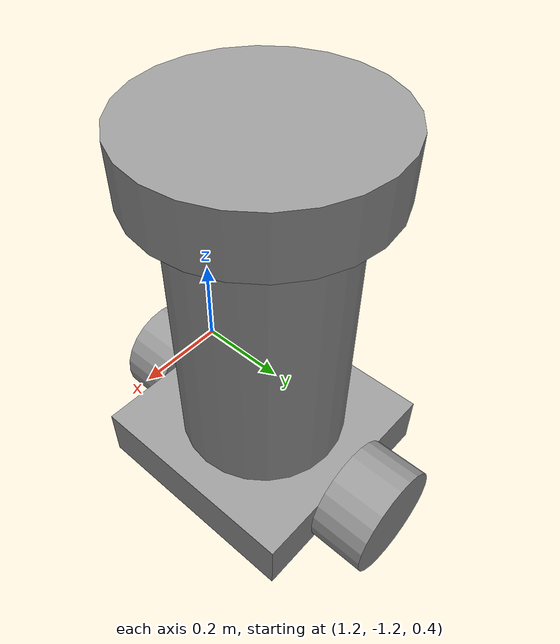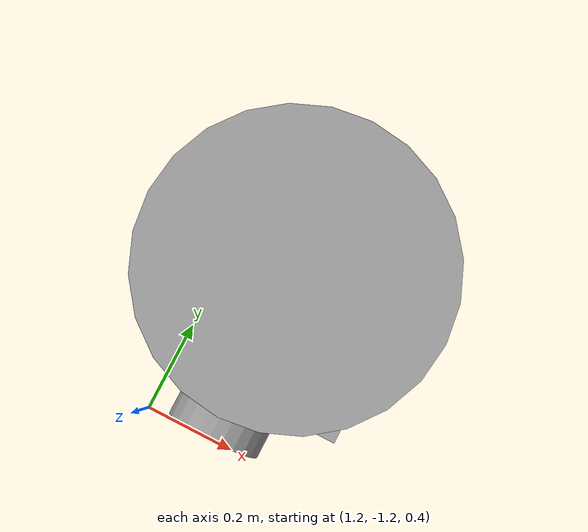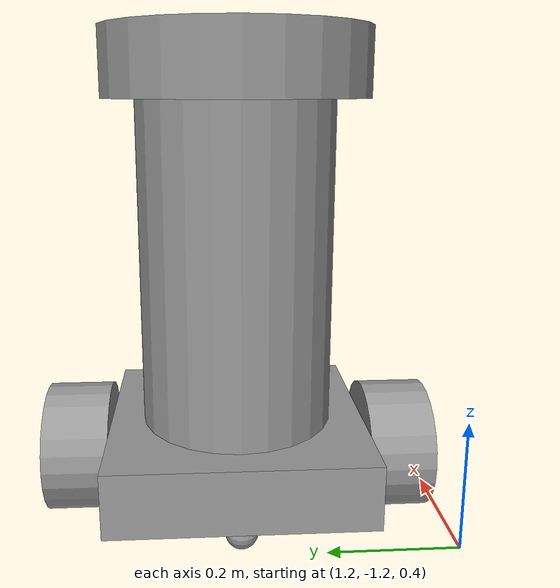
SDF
<?xml version='1.0'?>
<sdf version='1.6'>
  <model name='ServeronWheels'>
    <link name='link_4'>
      <pose frame=''>1.37401 -0.876349 0.5 1.5e-05 1e-06 -0.001069</pose>
      <inertial>
        <mass>1</mass>
        <inertia>
          <ixx>0.166667</ixx>
          <ixy>0</ixy>
          <ixz>0</ixz>
          <iyy>0.166667</iyy>
          <iyz>0</iyz>
          <izz>0.166667</izz>
        </inertia>
        <pose frame=''>0 0 0 0 -0 0</pose>
      </inertial>
      <self_collide>0</self_collide>
      <kinematic>0</kinematic>
      <visual name='visual'>
        <pose frame=''>0 0 0 0 -0 0</pose>
        <geometry>
          <box>
            <size>0.4 0.4 0.1</size>
          </box>
        </geometry>
        <material>
          <lighting>1</lighting>
          <script>
            <uri>file://media/materials/scripts/gazebo.material</uri>
            <name>Gazebo/Grey</name>
          </script>
          <shader type='pixel'>
            <normal_map>__default__</normal_map>
          </shader>
          <ambient>0.3 0.3 0.3 1</ambient>
          <diffuse>0.7 0.7 0.7 1</diffuse>
          <specular>0.01 0.01 0.01 1</specular>
          <emissive>0 0 0 1</emissive>
        </material>
        <transparency>0</transparency>
        <cast_shadows>1</cast_shadows>
      </visual>
      <collision name='collision'>
        <laser_retro>0</laser_retro>
        <max_contacts>10</max_contacts>
        <pose frame=''>0 0 0 0 -0 0</pose>
        <geometry>
          <box>
            <size>0.4 0.4 0.1</size>
          </box>
        </geometry>
        <surface>
          <friction>
            <ode>
              <mu>1</mu>
              <mu2>1</mu2>
              <fdir1>0 0 0</fdir1>
              <slip1>0</slip1>
              <slip2>0</slip2>
            </ode>
            <torsional>
              <coefficient>1</coefficient>
              <patch_radius>0</patch_radius>
              <surface_radius>0</surface_radius>
              <use_patch_radius>1</use_patch_radius>
              <ode>
                <slip>0</slip>
              </ode>
            </torsional>
          </friction>
          <bounce>
            <restitution_coefficient>0</restitution_coefficient>
            <threshold>1e+06</threshold>
          </bounce>
          <contact>
            <collide_without_contact>0</collide_without_contact>
            <collide_without_contact_bitmask>1</collide_without_contact_bitmask>
            <collide_bitmask>1</collide_bitmask>
            <ode>
              <soft_cfm>0</soft_cfm>
              <soft_erp>0.2</soft_erp>
              <kp>1e+13</kp>
              <kd>1</kd>
              <max_vel>0.01</max_vel>
              <min_depth>0</min_depth>
            </ode>
            <bullet>
              <split_impulse>1</split_impulse>
              <split_impulse_penetration_threshold>-0.01</split_impulse_penetration_threshold>
              <soft_cfm>0</soft_cfm>
              <soft_erp>0.2</soft_erp>
              <kp>1e+13</kp>
              <kd>1</kd>
            </bullet>
          </contact>
        </surface>
      </collision>
    </link>
    <link name='link_0'>
      <pose frame=''>1.22401 -0.876187 0.425001 0 -0 0</pose>
      <inertial>
        <mass>1</mass>
        <inertia>
          <ixx>0.1</ixx>
          <ixy>0</ixy>
          <ixz>0</ixz>
          <iyy>0.1</iyy>
          <iyz>0</iyz>
          <izz>0.1</izz>
        </inertia>
        <pose frame=''>0 0 0 0 -0 0</pose>
      </inertial>
      <gravity>1</gravity>
      <self_collide>0</self_collide>
      <kinematic>0</kinematic>
      <visual name='visual'>
        <pose frame=''>0 0 0 0 -0 0</pose>
        <geometry>
          <sphere>
            <radius>0.025</radius>
          </sphere>
        </geometry>
        <material>
          <lighting>1</lighting>
          <script>
            <uri>file://media/materials/scripts/gazebo.material</uri>
            <name>Gazebo/Grey</name>
          </script>
          <shader type='pixel'>
            <normal_map>__default__</normal_map>
          </shader>
          <ambient>0.3 0.3 0.3 1</ambient>
          <diffuse>0.7 0.7 0.7 1</diffuse>
          <specular>0.01 0.01 0.01 1</specular>
          <emissive>0 0 0 1</emissive>
        </material>
        <transparency>0</transparency>
        <cast_shadows>1</cast_shadows>
      </visual>
      <collision name='collision'>
        <laser_retro>0</laser_retro>
        <max_contacts>10</max_contacts>
        <pose frame=''>0 0 0 0 -0 0</pose>
        <geometry>
          <sphere>
            <radius>0.025</radius>
          </sphere>
        </geometry>
        <surface>
          <friction>
            <ode>
              <mu>1</mu>
              <mu2>1</mu2>
              <fdir1>0 0 0</fdir1>
              <slip1>0</slip1>
              <slip2>0</slip2>
            </ode>
            <torsional>
              <coefficient>1</coefficient>
              <patch_radius>0</patch_radius>
              <surface_radius>0</surface_radius>
              <use_patch_radius>1</use_patch_radius>
              <ode>
                <slip>0</slip>
              </ode>
            </torsional>
          </friction>
          <bounce>
            <restitution_coefficient>0</restitution_coefficient>
            <threshold>1e+06</threshold>
          </bounce>
          <contact>
            <collide_without_contact>0</collide_without_contact>
            <collide_without_contact_bitmask>1</collide_without_contact_bitmask>
            <collide_bitmask>1</collide_bitmask>
            <ode>
              <soft_cfm>0</soft_cfm>
              <soft_erp>0.2</soft_erp>
              <kp>1e+13</kp>
              <kd>1</kd>
              <max_vel>0.01</max_vel>
              <min_depth>0</min_depth>
            </ode>
            <bullet>
              <split_impulse>1</split_impulse>
              <split_impulse_penetration_threshold>-0.01</split_impulse_penetration_threshold>
              <soft_cfm>0</soft_cfm>
              <soft_erp>0.2</soft_erp>
              <kp>1e+13</kp>
              <kd>1</kd>
            </bullet>
          </contact>
        </surface>
      </collision>
    </link>
    <link name='link_0_clone'>
      <pose frame=''>1.52401 -0.876509 0.425 0 -0 0</pose>
      <inertial>
        <mass>1</mass>
        <inertia>
          <ixx>0.1</ixx>
          <ixy>0</ixy>
          <ixz>0</ixz>
          <iyy>0.1</iyy>
          <iyz>0</iyz>
          <izz>0.1</izz>
        </inertia>
        <pose frame=''>0 0 0 0 -0 0</pose>
      </inertial>
      <self_collide>0</self_collide>
      <kinematic>0</kinematic>
      <gravity>1</gravity>
      <visual name='visual'>
        <pose frame=''>0 0 0 0 -0 0</pose>
        <geometry>
          <sphere>
            <radius>0.025</radius>
          </sphere>
        </geometry>
        <material>
          <lighting>1</lighting>
          <script>
            <uri>file://media/materials/scripts/gazebo.material</uri>
            <name>Gazebo/Grey</name>
          </script>
          <shader type='pixel'>
            <normal_map>__default__</normal_map>
          </shader>
          <ambient>0.3 0.3 0.3 1</ambient>
          <diffuse>0.7 0.7 0.7 1</diffuse>
          <specular>0.01 0.01 0.01 1</specular>
          <emissive>0 0 0 1</emissive>
        </material>
        <transparency>0</transparency>
        <cast_shadows>1</cast_shadows>
      </visual>
      <collision name='collision'>
        <laser_retro>0</laser_retro>
        <max_contacts>10</max_contacts>
        <pose frame=''>0 0 0 0 -0 0</pose>
        <geometry>
          <sphere>
            <radius>0.025</radius>
          </sphere>
        </geometry>
        <surface>
          <friction>
            <ode>
              <mu>1</mu>
              <mu2>1</mu2>
              <fdir1>0 0 0</fdir1>
              <slip1>0</slip1>
              <slip2>0</slip2>
            </ode>
            <torsional>
              <coefficient>1</coefficient>
              <patch_radius>0</patch_radius>
              <surface_radius>0</surface_radius>
              <use_patch_radius>1</use_patch_radius>
              <ode>
                <slip>0</slip>
              </ode>
            </torsional>
          </friction>
          <bounce>
            <restitution_coefficient>0</restitution_coefficient>
            <threshold>1e+06</threshold>
          </bounce>
          <contact>
            <collide_without_contact>0</collide_without_contact>
            <collide_without_contact_bitmask>1</collide_without_contact_bitmask>
            <collide_bitmask>1</collide_bitmask>
            <ode>
              <soft_cfm>0</soft_cfm>
              <soft_erp>0.2</soft_erp>
              <kp>1e+13</kp>
              <kd>1</kd>
              <max_vel>0.01</max_vel>
              <min_depth>0</min_depth>
            </ode>
            <bullet>
              <split_impulse>1</split_impulse>
              <split_impulse_penetration_threshold>-0.01</split_impulse_penetration_threshold>
              <soft_cfm>0</soft_cfm>
              <soft_erp>0.2</soft_erp>
              <kp>1e+13</kp>
              <kd>1</kd>
            </bullet>
          </contact>
        </surface>
      </collision>
    </link>
    <link name='link_5'>
      <pose frame=''>1.35374 -1.12644 0.499883 1.57 1e-06 -0.001069</pose>
      <inertial>
        <mass>1</mass>
        <inertia>
          <ixx>0.145833</ixx>
          <ixy>0</ixy>
          <ixz>0</ixz>
          <iyy>0.145833</iyy>
          <iyz>0</iyz>
          <izz>0.125</izz>
        </inertia>
        <pose frame=''>0 0 0 0 -0 0</pose>
      </inertial>
      <self_collide>0</self_collide>
      <kinematic>0</kinematic>
      <gravity>1</gravity>
      <visual name='visual'>
        <pose frame=''>0 0 0 0 -0 0</pose>
        <geometry>
          <cylinder>
            <radius>0.1</radius>
            <length>0.1</length>
          </cylinder>
        </geometry>
        <material>
          <lighting>1</lighting>
          <script>
            <uri>file://media/materials/scripts/gazebo.material</uri>
            <name>Gazebo/Grey</name>
          </script>
          <shader type='pixel'>
            <normal_map>__default__</normal_map>
          </shader>
          <ambient>0.3 0.3 0.3 1</ambient>
          <diffuse>0.7 0.7 0.7 1</diffuse>
          <specular>0.01 0.01 0.01 1</specular>
          <emissive>0 0 0 1</emissive>
        </material>
        <transparency>0</transparency>
        <cast_shadows>1</cast_shadows>
      </visual>
      <collision name='collision'>
        <laser_retro>0</laser_retro>
        <max_contacts>10</max_contacts>
        <pose frame=''>0 0 0 0 -0 0</pose>
        <geometry>
          <cylinder>
            <radius>0.1</radius>
            <length>0.1</length>
          </cylinder>
        </geometry>
        <surface>
          <friction>
            <ode>
              <mu>1</mu>
              <mu2>1</mu2>
              <fdir1>0 0 0</fdir1>
              <slip1>0</slip1>
              <slip2>0</slip2>
            </ode>
            <torsional>
              <coefficient>1</coefficient>
              <patch_radius>0</patch_radius>
              <surface_radius>0</surface_radius>
              <use_patch_radius>1</use_patch_radius>
              <ode>
                <slip>0</slip>
              </ode>
            </torsional>
          </friction>
          <bounce>
            <restitution_coefficient>0</restitution_coefficient>
            <threshold>1e+06</threshold>
          </bounce>
          <contact>
            <collide_without_contact>0</collide_without_contact>
            <collide_without_contact_bitmask>1</collide_without_contact_bitmask>
            <collide_bitmask>1</collide_bitmask>
            <ode>
              <soft_cfm>0</soft_cfm>
              <soft_erp>0.2</soft_erp>
              <kp>1e+13</kp>
              <kd>1</kd>
              <max_vel>0.01</max_vel>
              <min_depth>0</min_depth>
            </ode>
            <bullet>
              <split_impulse>1</split_impulse>
              <split_impulse_penetration_threshold>-0.01</split_impulse_penetration_threshold>
              <soft_cfm>0</soft_cfm>
              <soft_erp>0.2</soft_erp>
              <kp>1e+13</kp>
              <kd>1</kd>
            </bullet>
          </contact>
        </surface>
      </collision>
    </link>
    <link name='link_5_clone'>
      <pose frame=''>1.37428 -0.626162 0.499988 1.57001 2e-06 -0.002138</pose>
      <inertial>
        <mass>1</mass>
        <inertia>
          <ixx>0.145833</ixx>
          <ixy>0</ixy>
          <ixz>0</ixz>
          <iyy>0.145833</iyy>
          <iyz>0</iyz>
          <izz>0.125</izz>
        </inertia>
        <pose frame=''>0 0 0 0 -0 0</pose>
      </inertial>
      <self_collide>0</self_collide>
      <kinematic>0</kinematic>
      <visual name='visual'>
        <pose frame=''>0 0 0 0 -0 0</pose>
        <geometry>
          <cylinder>
            <radius>0.1</radius>
            <length>0.1</length>
          </cylinder>
        </geometry>
        <material>
          <lighting>1</lighting>
          <script>
            <uri>file://media/materials/scripts/gazebo.material</uri>
            <name>Gazebo/Grey</name>
          </script>
          <shader type='pixel'>
            <normal_map>__default__</normal_map>
          </shader>
          <ambient>0.3 0.3 0.3 1</ambient>
          <diffuse>0.7 0.7 0.7 1</diffuse>
          <specular>0.01 0.01 0.01 1</specular>
          <emissive>0 0 0 1</emissive>
        </material>
        <transparency>0</transparency>
        <cast_shadows>1</cast_shadows>
      </visual>
      <collision name='collision'>
        <laser_retro>0</laser_retro>
        <max_contacts>10</max_contacts>
        <pose frame=''>0 0 0 0 -0 0</pose>
        <geometry>
          <cylinder>
            <radius>0.1</radius>
            <length>0.1</length>
          </cylinder>
        </geometry>
        <surface>
          <friction>
            <ode>
              <mu>1</mu>
              <mu2>1</mu2>
              <fdir1>0 0 0</fdir1>
              <slip1>0</slip1>
              <slip2>0</slip2>
            </ode>
            <torsional>
              <coefficient>1</coefficient>
              <patch_radius>0</patch_radius>
              <surface_radius>0</surface_radius>
              <use_patch_radius>1</use_patch_radius>
              <ode>
                <slip>0</slip>
              </ode>
            </torsional>
          </friction>
          <bounce>
            <restitution_coefficient>0</restitution_coefficient>
            <threshold>1e+06</threshold>
          </bounce>
          <contact>
            <collide_without_contact>0</collide_without_contact>
            <collide_without_contact_bitmask>1</collide_without_contact_bitmask>
            <collide_bitmask>1</collide_bitmask>
            <ode>
              <soft_cfm>0</soft_cfm>
              <soft_erp>0.2</soft_erp>
              <kp>1e+13</kp>
              <kd>1</kd>
              <max_vel>0.01</max_vel>
              <min_depth>0</min_depth>
            </ode>
            <bullet>
              <split_impulse>1</split_impulse>
              <split_impulse_penetration_threshold>-0.01</split_impulse_penetration_threshold>
              <soft_cfm>0</soft_cfm>
              <soft_erp>0.2</soft_erp>
              <kp>1e+13</kp>
              <kd>1</kd>
            </bullet>
          </contact>
        </surface>
      </collision>
    </link>
    <link name='link_5_clone_clone'>
      <pose frame=''>1.37401 -0.876353 0.799991 0 3e-06 -0.003207</pose>
      <inertial>
        <mass>1</mass>
        <inertia>
          <ixx>0.145833</ixx>
          <ixy>0</ixy>
          <ixz>0</ixz>
          <iyy>0.145833</iyy>
          <iyz>0</iyz>
          <izz>0.125</izz>
        </inertia>
        <pose frame=''>0 0 0 0 -0 0</pose>
      </inertial>
      <self_collide>0</self_collide>
      <kinematic>0</kinematic>
      <visual name='visual'>
        <pose frame=''>0 0 0 0 -0 0</pose>
        <geometry>
          <cylinder>
            <radius>0.15</radius>
            <length>0.5</length>
          </cylinder>
        </geometry>
        <material>
          <lighting>1</lighting>
          <script>
            <uri>file://media/materials/scripts/gazebo.material</uri>
            <name>Gazebo/Grey</name>
          </script>
          <shader type='pixel'>
            <normal_map>__default__</normal_map>
          </shader>
          <ambient>0.3 0.3 0.3 1</ambient>
          <diffuse>0.7 0.7 0.7 1</diffuse>
          <specular>0.01 0.01 0.01 1</specular>
          <emissive>0 0 0 1</emissive>
        </material>
        <transparency>0</transparency>
        <cast_shadows>1</cast_shadows>
      </visual>
      <collision name='collision'>
        <laser_retro>0</laser_retro>
        <max_contacts>10</max_contacts>
        <pose frame=''>0 0 0 0 -0 0</pose>
        <geometry>
          <cylinder>
            <radius>0.15</radius>
            <length>0.5</length>
          </cylinder>
        </geometry>
        <surface>
          <friction>
            <ode>
              <mu>1</mu>
              <mu2>1</mu2>
              <fdir1>0 0 0</fdir1>
              <slip1>0</slip1>
              <slip2>0</slip2>
            </ode>
            <torsional>
              <coefficient>1</coefficient>
              <patch_radius>0</patch_radius>
              <surface_radius>0</surface_radius>
              <use_patch_radius>1</use_patch_radius>
              <ode>
                <slip>0</slip>
              </ode>
            </torsional>
          </friction>
          <bounce>
            <restitution_coefficient>0</restitution_coefficient>
            <threshold>1e+06</threshold>
          </bounce>
          <contact>
            <collide_without_contact>0</collide_without_contact>
            <collide_without_contact_bitmask>1</collide_without_contact_bitmask>
            <collide_bitmask>1</collide_bitmask>
            <ode>
              <soft_cfm>0</soft_cfm>
              <soft_erp>0.2</soft_erp>
              <kp>1e+13</kp>
              <kd>1</kd>
              <max_vel>0.01</max_vel>
              <min_depth>0</min_depth>
            </ode>
            <bullet>
              <split_impulse>1</split_impulse>
              <split_impulse_penetration_threshold>-0.01</split_impulse_penetration_threshold>
              <soft_cfm>0</soft_cfm>
              <soft_erp>0.2</soft_erp>
              <kp>1e+13</kp>
              <kd>1</kd>
            </bullet>
          </contact>
        </surface>
      </collision>
    </link>
    <link name='link_5_clone_clone_clone'>
      <pose frame=''>1.37401 -0.876358 1.1 1.5e-05 4e-06 -0.004276</pose>
      <inertial>
        <mass>1</mass>
        <inertia>
          <ixx>0.145833</ixx>
          <ixy>0</ixy>
          <ixz>0</ixz>
          <iyy>0.145833</iyy>
          <iyz>0</iyz>
          <izz>0.125</izz>
        </inertia>
        <pose frame=''>0 0 0 0 -0 0</pose>
      </inertial>
      <self_collide>0</self_collide>
      <kinematic>0</kinematic>
      <visual name='visual'>
        <pose frame=''>0 0 0 0 -0 0</pose>
        <geometry>
          <cylinder>
            <radius>0.2</radius>
            <length>0.1</length>
          </cylinder>
        </geometry>
        <material>
          <lighting>1</lighting>
          <script>
            <uri>file://media/materials/scripts/gazebo.material</uri>
            <name>Gazebo/Grey</name>
          </script>
          <shader type='pixel'>
            <normal_map>__default__</normal_map>
          </shader>
          <ambient>0.3 0.3 0.3 1</ambient>
          <diffuse>0.7 0.7 0.7 1</diffuse>
          <specular>0.01 0.01 0.01 1</specular>
          <emissive>0 0 0 1</emissive>
        </material>
        <transparency>0</transparency>
        <cast_shadows>1</cast_shadows>
      </visual>
      <collision name='collision'>
        <laser_retro>0</laser_retro>
        <max_contacts>10</max_contacts>
        <pose frame=''>0 0 0 0 -0 0</pose>
        <geometry>
          <cylinder>
            <radius>0.2</radius>
            <length>0.1</length>
          </cylinder>
        </geometry>
        <surface>
          <friction>
            <ode>
              <mu>1</mu>
              <mu2>1</mu2>
              <fdir1>0 0 0</fdir1>
              <slip1>0</slip1>
              <slip2>0</slip2>
            </ode>
            <torsional>
              <coefficient>1</coefficient>
              <patch_radius>0</patch_radius>
              <surface_radius>0</surface_radius>
              <use_patch_radius>1</use_patch_radius>
              <ode>
                <slip>0</slip>
              </ode>
            </torsional>
          </friction>
          <bounce>
            <restitution_coefficient>0</restitution_coefficient>
            <threshold>1e+06</threshold>
          </bounce>
          <contact>
            <collide_without_contact>0</collide_without_contact>
            <collide_without_contact_bitmask>1</collide_without_contact_bitmask>
            <collide_bitmask>1</collide_bitmask>
            <ode>
              <soft_cfm>0</soft_cfm>
              <soft_erp>0.2</soft_erp>
              <kp>1e+13</kp>
              <kd>1</kd>
              <max_vel>0.01</max_vel>
              <min_depth>0</min_depth>
            </ode>
            <bullet>
              <split_impulse>1</split_impulse>
              <split_impulse_penetration_threshold>-0.01</split_impulse_penetration_threshold>
              <soft_cfm>0</soft_cfm>
              <soft_erp>0.2</soft_erp>
              <kp>1e+13</kp>
              <kd>1</kd>
            </bullet>
          </contact>
        </surface>
      </collision>
    </link>
    <joint name='link_4_JOINT_1' type='ball'>
      <parent>link_4</parent>
      <child>link_0_clone</child>
      <pose frame=''>0 0 0 0 -0 0</pose>
      <physics>
        <ode>
          <limit>
            <cfm>0</cfm>
            <erp>0.2</erp>
          </limit>
          <suspension>
            <cfm>0</cfm>
            <erp>0.2</erp>
          </suspension>
        </ode>
      </physics>
    </joint>
    <joint name='link_4_JOINT_4_0' type='ball'>
      <parent>link_4</parent>
      <child>link_0</child>
      <pose frame=''>0 0 0 0 -0 0</pose>
      <physics>
        <ode>
          <limit>
            <cfm>0</cfm>
            <erp>0.2</erp>
          </limit>
          <suspension>
            <cfm>0</cfm>
            <erp>0.2</erp>
          </suspension>
        </ode>
      </physics>
    </joint>
    <joint name='link_4_JOINT_4' type='revolute'>
      <parent>link_4</parent>
      <child>link_5</child>
      <pose frame=''>0 0 0 0 -0 0</pose>
      <axis>
        <xyz>0 0 1</xyz>
        <use_parent_model_frame>0</use_parent_model_frame>
        <limit>
          <lower>-1.79769e+308</lower>
          <upper>1.79769e+308</upper>
          <effort>-1</effort>
          <velocity>-1</velocity>
        </limit>
        <dynamics>
          <spring_reference>0</spring_reference>
          <spring_stiffness>0</spring_stiffness>
          <damping>0</damping>
          <friction>0</friction>
        </dynamics>
      </axis>
      <physics>
        <ode>
          <limit>
            <cfm>0</cfm>
            <erp>0.2</erp>
          </limit>
          <suspension>
            <cfm>0</cfm>
            <erp>0.2</erp>
          </suspension>
        </ode>
      </physics>
    </joint>
    <joint name='link_4_JOINT_5' type='revolute'>
      <parent>link_4</parent>
      <child>link_5_clone</child>
      <pose frame=''>0 0 0 0 -0 0</pose>
      <axis>
        <xyz>0 0 1</xyz>
        <use_parent_model_frame>0</use_parent_model_frame>
        <limit>
          <lower>-1e+16</lower>
          <upper>1e+16</upper>
          <effort>-1</effort>
          <velocity>-1</velocity>
        </limit>
        <dynamics>
          <spring_reference>0</spring_reference>
          <spring_stiffness>0</spring_stiffness>
          <damping>0</damping>
          <friction>0</friction>
        </dynamics>
      </axis>
      <physics>
        <ode>
          <limit>
            <cfm>0</cfm>
            <erp>0.2</erp>
          </limit>
          <suspension>
            <cfm>0</cfm>
            <erp>0.2</erp>
          </suspension>
        </ode>
      </physics>
    </joint>
    <joint name='link_4_JOINT_6' type='fixed'>
      <parent>link_4</parent>
      <child>link_5_clone_clone</child>
      <pose frame=''>0 0 0 0 -0 0</pose>
      <physics>
        <ode>
          <limit>
            <cfm>0</cfm>
            <erp>0.2</erp>
          </limit>
          <suspension>
            <cfm>0</cfm>
            <erp>0.2</erp>
          </suspension>
        </ode>
      </physics>
    </joint>
    <joint name='link_5_clone_clone_JOINT_7' type='fixed'>
      <parent>link_5_clone_clone</parent>
      <child>link_5_clone_clone_clone</child>
      <pose frame=''>0 0 0 0 -0 0</pose>
      <physics>
        <ode>
          <limit>
            <cfm>0</cfm>
            <erp>0.2</erp>
          </limit>
          <suspension>
            <cfm>0</cfm>
            <erp>0.2</erp>
          </suspension>
        </ode>
      </physics>
    </joint>
    <static>0</static>
    <allow_auto_disable>1</allow_auto_disable>
  </model>
</sdf>
